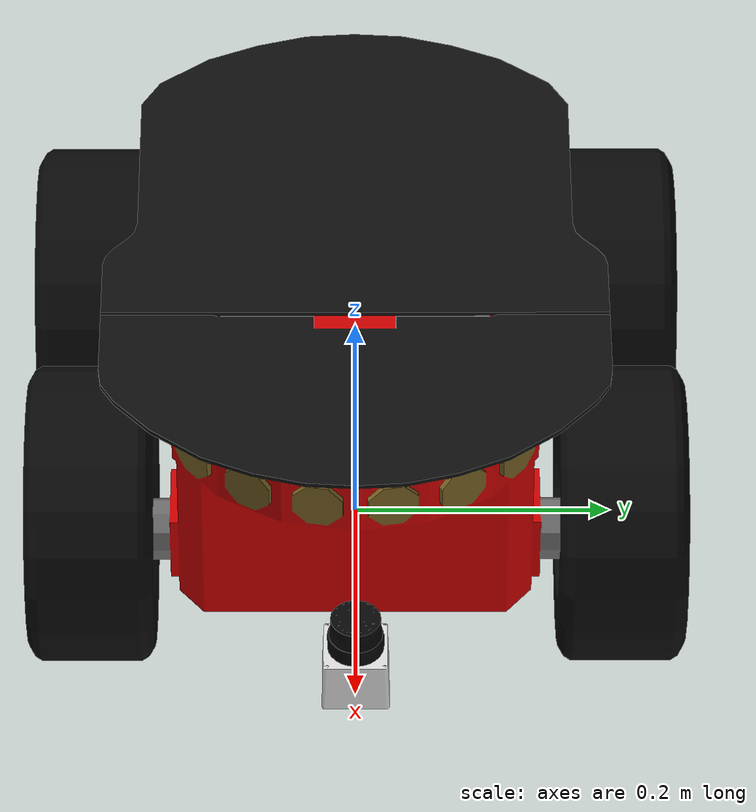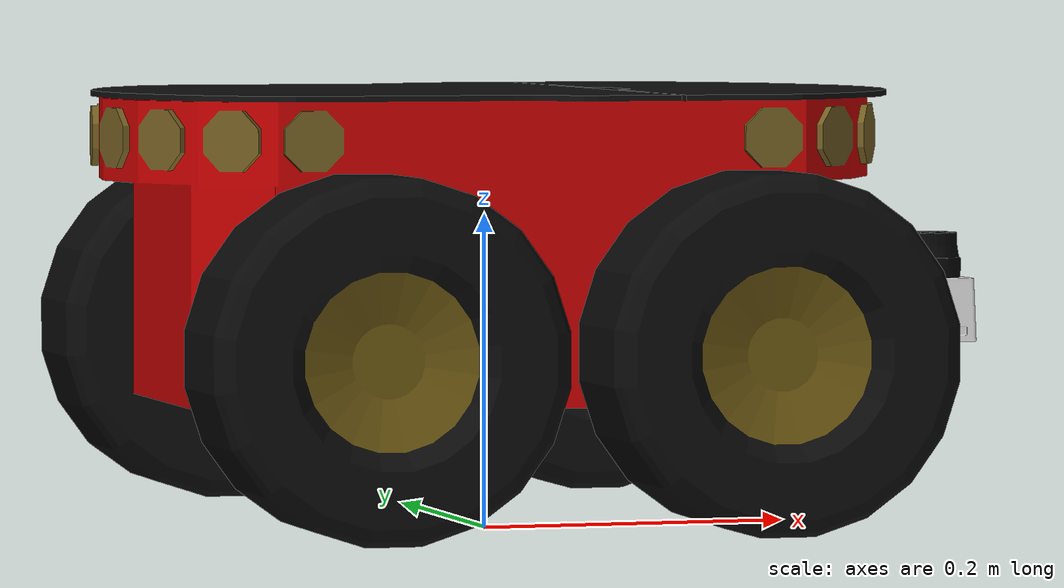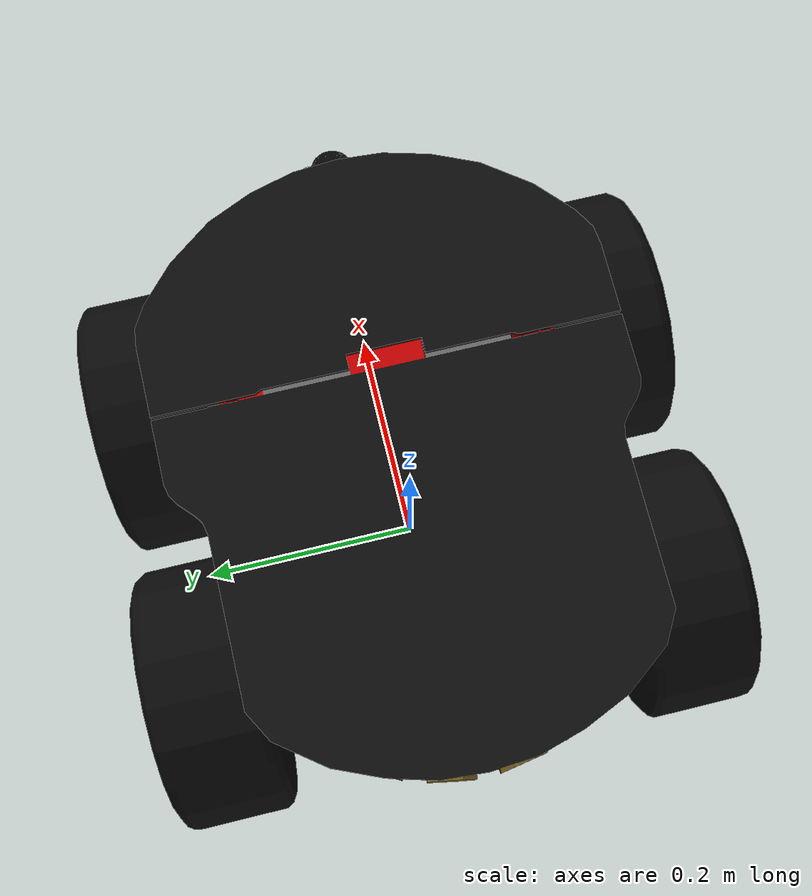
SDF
<?xml version="1.0" ?>
<sdf version="1.5">
  <model name="pioneer3at">
    <pose>0 0 0.180 0 0 0</pose>
    <static>false</static>
    <link name="chassis">
      <inertial>
        <mass>14.0</mass>
        <inertia>
          <ixx>0.147116667</ixx>
          <ixy>0.0</ixy>
          <ixz>0.0</ixz>
          <iyy>0.334951167</iyy>
          <iyz>0.0</iyz>
          <izz>0.3978345</izz>
        </inertia>
      </inertial>
      <collision name="collision">
        <geometry>
          <box>
            <size>0.501 0.300 0.19</size>
          </box>
        </geometry>
      </collision>
      <visual name="visual">
        <geometry>
          <mesh>
            <uri>model://pioneer3at/meshes/chassis.dae</uri>
          </mesh>
        </geometry>
      </visual>
    </link>
    <link name="right_front_wheel">
      <pose>0.125 -0.201 -0.06 1.5707 0 0</pose>

      <inertial>
        <mass>1.5</mass>
        <inertia>
          <ixx>0.005240625</ixx>
          <iyy>0.005240625</iyy>
          <izz>0.009075</izz>
          <ixy>0</ixy>
          <ixz>0</ixz>
          <iyz>0</iyz>
        </inertia>
      </inertial>

      <collision name="collision">
        <geometry>
          <cylinder>
            <radius>0.110</radius>
            <length>0.075</length>
          </cylinder>
        </geometry>
        <surface>
          <friction>
            <ode>
              <mu>1</mu>
              <mu2>1</mu2>
              <slip1>0.5</slip1>
              <slip2>0</slip2>
            </ode>
          </friction>
        </surface>
      </collision>
      <visual name="visual">
        <geometry>
          <mesh>
            <uri>model://pioneer3at/meshes/wheel.dae</uri>
          </mesh>
        </geometry>
      </visual>
    </link>
    <link name="left_front_wheel">
      <pose>0.125 0.201 -0.06 1.5707 0 0</pose>

      <inertial>
        <mass>1.5</mass>
        <inertia>
          <ixx>0.005240625</ixx>
          <iyy>0.005240625</iyy>
          <izz>0.009075</izz>
          <ixy>0</ixy>
          <ixz>0</ixz>
          <iyz>0</iyz>
        </inertia>
      </inertial>

      <collision name="collision">
        <geometry>
          <cylinder>
            <radius>0.110</radius>
            <length>0.075</length>
          </cylinder>
        </geometry>
        <surface>
          <friction>
            <ode>
              <mu>1</mu>
              <mu2>1</mu2>
              <slip1>0.5</slip1>
              <slip2>0</slip2>
            </ode>
          </friction>
        </surface>
      </collision>
      <visual name="visual">
        <geometry>
          <mesh>
            <uri>model://pioneer3at/meshes/wheel.dae</uri>
          </mesh>
        </geometry>
      </visual>
    </link>
    <link name="right_rear_wheel">
      <pose>-0.125 -0.201 -0.06 1.5707 0 0</pose>

      <inertial>
        <mass>1.5</mass>
        <inertia>
          <ixx>0.005240625</ixx>
          <iyy>0.005240625</iyy>
          <izz>0.009075</izz>
          <ixy>0</ixy>
          <ixz>0</ixz>
          <iyz>0</iyz>
        </inertia>
      </inertial>

      <collision name="collision">
        <geometry>
          <cylinder>
            <radius>0.110</radius>
            <length>0.075</length>
          </cylinder>
        </geometry>
        <surface>
          <friction>
            <ode>
              <mu>1</mu>
              <mu2>1</mu2>
              <slip1>0.5</slip1>
              <slip2>0</slip2>
            </ode>
          </friction>
        </surface>
      </collision>
      <visual name="visual">
        <geometry>
          <mesh>
            <uri>model://pioneer3at/meshes/wheel.dae</uri>
          </mesh>
        </geometry>
      </visual>
    </link>
    <link name="left_rear_wheel">
      <pose>-0.125 0.201 -0.06 1.5707 0 0</pose>

      <inertial>
        <mass>1.5</mass>
        <inertia>
          <ixx>0.005240625</ixx>
          <iyy>0.005240625</iyy>
          <izz>0.009075</izz>
          <ixy>0</ixy>
          <ixz>0</ixz>
          <iyz>0</iyz>
        </inertia>
      </inertial>

      <collision name="collision">
        <geometry>
          <cylinder>
            <radius>0.110</radius>
            <length>0.075</length>
          </cylinder>
        </geometry>
        <surface>
          <friction>
            <ode>
              <mu>1</mu>
              <mu2>1</mu2>
              <slip1>0.5</slip1>
              <slip2>0</slip2>
            </ode>
          </friction>
        </surface>
      </collision>
      <visual name="visual">
        <geometry>
          <mesh>
            <uri>model://pioneer3at/meshes/wheel.dae</uri>
          </mesh>
        </geometry>
      </visual>
    </link>
    <joint type="revolute" name="right_front">
      <pose>0 0 0 0 0 0</pose>
      <child>right_front_wheel</child>
      <parent>chassis</parent>
      <axis>
        <xyz>0 1 0</xyz>
        <use_parent_model_frame>true</use_parent_model_frame>
      </axis>
    </joint>
    <joint type="revolute" name="right_rear">
      <pose>0 0 0 0 0 0</pose>
      <child>right_rear_wheel</child>
      <parent>chassis</parent>
      <axis>
        <xyz>0 1 0</xyz>
        <use_parent_model_frame>true</use_parent_model_frame>
      </axis>
    </joint>
    <joint type="revolute" name="left_front">
      <pose>0 0 0 0 0 0</pose>
      <child>left_front_wheel</child>
      <parent>chassis</parent>
      <axis>
        <xyz>0 1 0</xyz>
        <use_parent_model_frame>true</use_parent_model_frame>
      </axis>
    </joint>
    <joint type="revolute" name="left_rear">
      <pose>0 0 0 0 0 0</pose>
      <child>left_rear_wheel</child>
      <parent>chassis</parent>
      <axis>
        <xyz>0 1 0</xyz>
        <use_parent_model_frame>true</use_parent_model_frame>
      </axis>
    </joint>
    <plugin name="SkidSteerDrivePlugin" filename="libSkidSteerDrivePlugin.so">
      <right_front>right_front</right_front>
      <right_rear>right_rear</right_rear>
      <left_front>left_front</left_front>
      <left_rear>left_rear</left_rear>
      <MaxForce>5.0</MaxForce>
    </plugin>

    <joint name="base_laser_front_hokuyo_urg04_laser_joint" type="revolute">
      <pose>0 0 0 0 0 0</pose>
      <parent>chassis</parent>
      <child>base_laser_front_link</child>
      <axis>
        <dynamics>
          <damping>0</damping>
          <friction>0</friction>
        </dynamics>
        <limit><lower>0</lower><upper>0</upper><effort>0</effort><velocity>0</velocity></limit>
        <xyz>0 0 1</xyz>
      </axis>
    </joint>

    <link name="base_laser_front_link">
      <pose>0.300000 0 -0.030000 0 0 0</pose>
      <inertial>
        <pose>0 0 0 0 0 0</pose>
        <inertia>
          <ixx>0.100000</ixx>
          <ixy>0</ixy>
          <ixz>0</ixz>
          <iyy>0.100000</iyy>
          <iyz>0</iyz>
          <izz>0.100000</izz>
        </inertia>
        <mass>0.160000</mass>
      </inertial>
      <collision name="base_laser_front_link_geom">
        <pose>0 0 0 0 0 0</pose>
        <geometry>
          <mesh>
            <uri>model://hokuyo/meshes/hokuyo_convex.stl</uri>
          </mesh>
        </geometry>
        <surface>
          <friction>
            <ode>
              <mu>0</mu>
              <mu2>0</mu2>
              <fdir1>0 0 0</fdir1>
              <slip1>0</slip1>
              <slip2>0</slip2>
            </ode>
          </friction>
          <bounce>
            <restitution_coefficient>0</restitution_coefficient>
            <threshold>0</threshold>
          </bounce>
          <contact>
            <ode>
              <soft_cfm>0</soft_cfm>
              <soft_erp>0.200000</soft_erp>
              <kp>10000000000000.000000</kp>
              <kd>100000000000.000000</kd>
              <max_vel>-1</max_vel>
              <min_depth>0</min_depth>
            </ode>
          </contact>
        </surface>
        <laser_retro>0</laser_retro>
      </collision>
      <visual name="base_laser_front_link_geom_visual">
        <pose>0 0 0 0 0 0</pose>
        <geometry>
          <mesh>
            <uri>model://hokuyo/meshes/hokuyo.dae</uri>
          </mesh>
        </geometry>
      </visual>
      <sensor name="base_laser_front" type="ray">
        <pose>0 0 0 0 0 0</pose>
        <ray>
          <scan>
            <horizontal>
              <samples>640</samples>
              <resolution>1</resolution>
              <min_angle>-1.570000</min_angle>
              <max_angle>1.570000</max_angle>
            </horizontal>
          </scan>
          <range>
            <min>0.050000</min>
            <max>5.600000</max>
            <resolution>0.360000</resolution>
          </range>
        </ray>z

	<plugin name='laser_controller' filename='libgazebo_ros_laser.so'>
          <gaussianNoise>0.005</gaussianNoise>
          <alwaysOn>1</alwaysOn>
          <updateRate>20</updateRate>
          <topicName>pioneer3at/scan</topicName>
          <frameName>laser</frameName>
        </plugin>

	<update_rate>20</update_rate>
	<visualize>0</visualize>
      </sensor>
      <gravity>1</gravity>
      <self_collide>0</self_collide>
      <kinematic>0</kinematic>
    </link>

  </model>
</sdf>
